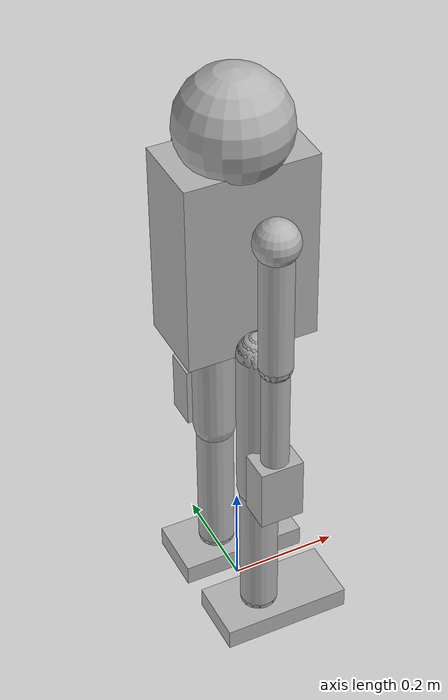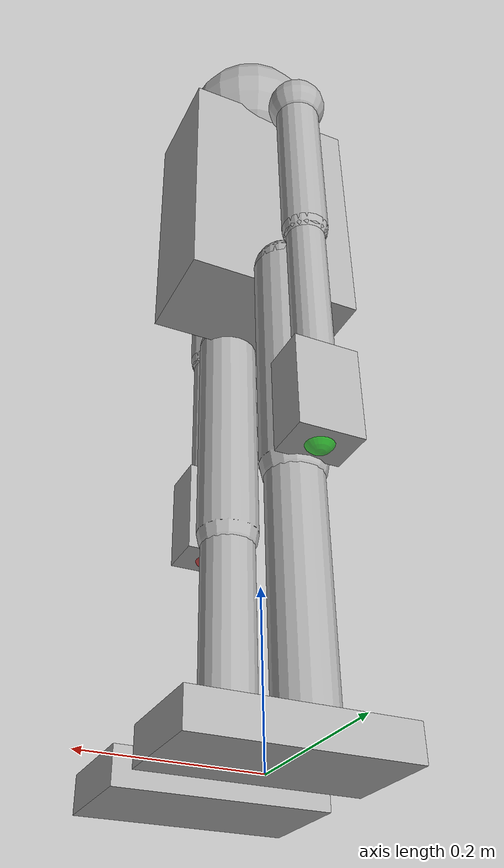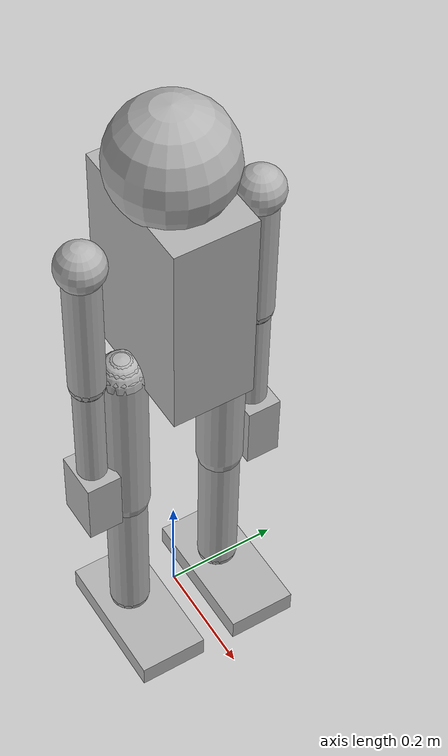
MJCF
<mujoco model="g1_full">

  <compiler angle="radian" autolimits="true"/>

  <option gravity="0 0 -9.81" timestep="0.002" integrator="implicitfast">
    <flag contact="enable" frictionloss="enable"/>
  </option>

  <default>
    <joint limited="true" damping="5.0" armature="0.01" frictionloss="0.1"/>
    <geom condim="3" friction="1.0 0.005 0.0001" rgba="0.7 0.7 0.7 1"/>
    <motor ctrllimited="true"/>
    <position kp="150" kv="10" ctrlrange="-10 10"/>
  </default>

  <asset>
    <texture type="skybox" builtin="gradient" rgb1="0.3 0.5 0.7" rgb2="0 0 0" width="512" height="3072"/>
    <texture type="2d" name="groundplane" builtin="checker" mark="edge" rgb1="0.2 0.3 0.4" rgb2="0.1 0.2 0.3" markrgb="0.8 0.8 0.8" width="300" height="300"/>
    <material name="groundplane" texture="groundplane" texuniform="true" texrepeat="5 5" reflectance="0.2"/>
    <material name="body_mat" rgba="0.3 0.3 0.8 1"/>
    <material name="link_mat" rgba="0.6 0.6 0.6 1"/>
    <material name="foot_mat" rgba="0.2 0.2 0.2 1"/>
  </asset>

  <worldbody>
    <!-- Floating base: torso -->
    <body name="torso" pos="0 0 0.78">
      <freejoint name="floating_base"/>
      <!-- Torso geometry -->
      <geom name="torso_geom" type="box" size="0.12 0.07 0.18" pos="0 0 0" material="body_mat" mass="10.0"/>
      <inertial pos="0 0 0" mass="10.0" diaginertia="0.08 0.06 0.05"/>

      <!-- WAIST -->
      <body name="waist" pos="0 0 -0.12">
        <joint name="waist_yaw" axis="0 0 1" range="-1.57 1.57" damping="8.0"/>
        <geom name="waist_geom" type="cylinder" size="0.06 0.04" pos="0 0 0" material="link_mat" mass="2.0"/>
        <inertial pos="0 0 0" mass="2.0" diaginertia="0.01 0.01 0.008"/>

        <!-- ===== LEFT LEG ===== -->
        <body name="left_hip_yaw_link" pos="0 0.09 -0.05">
          <joint name="left_hip_yaw" axis="0 0 1" range="-0.43 0.43" damping="8.0"/>
          <geom name="left_hip_yaw_geom" type="sphere" size="0.04" material="link_mat" mass="1.5"/>
          <inertial pos="0 0 0" mass="1.5" diaginertia="0.005 0.005 0.005"/>

          <body name="left_hip_roll_link" pos="0 0 0">
            <joint name="left_hip_roll" axis="1 0 0" range="-0.43 1.57" damping="8.0"/>
            <geom name="left_hip_roll_geom" type="sphere" size="0.04" material="link_mat" mass="0.5"/>
            <inertial pos="0 0 0" mass="0.5" diaginertia="0.002 0.002 0.002"/>

            <body name="left_hip_pitch_link" pos="0 0 0">
              <joint name="left_hip_pitch" axis="0 1 0" range="-1.57 1.57" damping="10.0"/>
              <geom name="left_thigh_geom" type="capsule" fromto="0 0 0 0 0 -0.3" size="0.04" material="link_mat" mass="3.5"/>
              <inertial pos="0 0 -0.15" mass="3.5" diaginertia="0.03 0.03 0.005"/>

              <body name="left_knee_link" pos="0 0 -0.3">
                <joint name="left_knee" axis="0 1 0" range="-0.26 2.53" damping="10.0"/>
                <geom name="left_shin_geom" type="capsule" fromto="0 0 0 0 0 -0.28" size="0.035" material="link_mat" mass="2.5"/>
                <inertial pos="0 0 -0.14" mass="2.5" diaginertia="0.02 0.02 0.003"/>

                <body name="left_ankle_pitch_link" pos="0 0 -0.28">
                  <joint name="left_ankle_pitch" axis="0 1 0" range="-0.87 0.52" damping="5.0"/>
                  <geom name="left_ankle_p_geom" type="sphere" size="0.035" material="link_mat" mass="0.5"/>
                  <inertial pos="0 0 0" mass="0.5" diaginertia="0.002 0.002 0.002"/>

                  <body name="left_ankle_roll_link" pos="0 0 0">
                    <joint name="left_ankle_roll" axis="1 0 0" range="-0.26 0.26" damping="3.0"/>
                    <geom name="left_foot_geom" type="box" size="0.12 0.06 0.02" pos="0.03 0 -0.03" material="foot_mat" mass="0.8"/>
                    <inertial pos="0.03 0 -0.03" mass="0.8" diaginertia="0.002 0.004 0.003"/>
                    <!-- Foot contact sites -->
                    <site name="left_foot_toe" pos="0.12 0 -0.04" size="0.01"/>
                    <site name="left_foot_heel" pos="-0.06 0 -0.04" size="0.01"/>
                    <site name="left_foot_center" pos="0.03 0 -0.04" size="0.01"/>
                  </body>
                </body>
              </body>
            </body>
          </body>
        </body>

        <!-- ===== RIGHT LEG ===== -->
        <body name="right_hip_yaw_link" pos="0 -0.09 -0.05">
          <joint name="right_hip_yaw" axis="0 0 1" range="-0.43 0.43" damping="8.0"/>
          <geom name="right_hip_yaw_geom" type="sphere" size="0.04" material="link_mat" mass="1.5"/>
          <inertial pos="0 0 0" mass="1.5" diaginertia="0.005 0.005 0.005"/>

          <body name="right_hip_roll_link" pos="0 0 0">
            <joint name="right_hip_roll" axis="1 0 0" range="-1.57 0.43" damping="8.0"/>
            <geom name="right_hip_roll_geom" type="sphere" size="0.04" material="link_mat" mass="0.5"/>
            <inertial pos="0 0 0" mass="0.5" diaginertia="0.002 0.002 0.002"/>

            <body name="right_hip_pitch_link" pos="0 0 0">
              <joint name="right_hip_pitch" axis="0 1 0" range="-1.57 1.57" damping="10.0"/>
              <geom name="right_thigh_geom" type="capsule" fromto="0 0 0 0 0 -0.3" size="0.04" material="link_mat" mass="3.5"/>
              <inertial pos="0 0 -0.15" mass="3.5" diaginertia="0.03 0.03 0.005"/>

              <body name="right_knee_link" pos="0 0 -0.3">
                <joint name="right_knee" axis="0 1 0" range="-0.26 2.53" damping="10.0"/>
                <geom name="right_shin_geom" type="capsule" fromto="0 0 0 0 0 -0.28" size="0.035" material="link_mat" mass="2.5"/>
                <inertial pos="0 0 -0.14" mass="2.5" diaginertia="0.02 0.02 0.003"/>

                <body name="right_ankle_pitch_link" pos="0 0 -0.28">
                  <joint name="right_ankle_pitch" axis="0 1 0" range="-0.87 0.52" damping="5.0"/>
                  <geom name="right_ankle_p_geom" type="sphere" size="0.035" material="link_mat" mass="0.5"/>
                  <inertial pos="0 0 0" mass="0.5" diaginertia="0.002 0.002 0.002"/>

                  <body name="right_ankle_roll_link" pos="0 0 0">
                    <joint name="right_ankle_roll" axis="1 0 0" range="-0.26 0.26" damping="3.0"/>
                    <geom name="right_foot_geom" type="box" size="0.12 0.06 0.02" pos="0.03 0 -0.03" material="foot_mat" mass="0.8"/>
                    <inertial pos="0.03 0 -0.03" mass="0.8" diaginertia="0.002 0.004 0.003"/>
                    <!-- Foot contact sites -->
                    <site name="right_foot_toe" pos="0.12 0 -0.04" size="0.01"/>
                    <site name="right_foot_heel" pos="-0.06 0 -0.04" size="0.01"/>
                    <site name="right_foot_center" pos="0.03 0 -0.04" size="0.01"/>
                  </body>
                </body>
              </body>
            </body>
          </body>
        </body>
      </body>

      <!-- ===== LEFT ARM ===== -->
      <body name="left_shoulder_link" pos="0 0.15 0.1">
        <joint name="left_shoulder_pitch" axis="0 1 0" range="-3.14 3.14" damping="5.0"/>
        <geom name="left_shoulder_geom" type="sphere" size="0.04" material="link_mat" mass="1.0"/>
        <inertial pos="0 0 0" mass="1.0" diaginertia="0.003 0.003 0.003"/>

        <body name="left_shoulder_roll_link" pos="0 0 0">
          <joint name="left_shoulder_roll" axis="1 0 0" range="-1.57 1.57" damping="5.0"/>
          <geom name="left_upper_arm_geom" type="capsule" fromto="0 0 0 0 0 -0.25" size="0.03" material="link_mat" mass="1.5"/>
          <inertial pos="0 0 -0.125" mass="1.5" diaginertia="0.01 0.01 0.002"/>

          <body name="left_shoulder_yaw_link" pos="0 0 -0.25">
            <joint name="left_shoulder_yaw" axis="0 0 1" range="-1.57 1.57" damping="3.0"/>
            <geom name="left_shoulder_y_geom" type="sphere" size="0.03" material="link_mat" mass="0.3"/>
            <inertial pos="0 0 0" mass="0.3" diaginertia="0.001 0.001 0.001"/>

            <body name="left_elbow_link" pos="0 0 0">
              <joint name="left_elbow" axis="0 1 0" range="-2.53 0.0" damping="3.0"/>
              <geom name="left_forearm_geom" type="capsule" fromto="0 0 0 0 0 -0.22" size="0.025" material="link_mat" mass="1.0"/>
              <inertial pos="0 0 -0.11" mass="1.0" diaginertia="0.005 0.005 0.001"/>

              <body name="left_wrist_roll_link" pos="0 0 -0.22">
                <joint name="left_wrist_roll" axis="0 0 1" range="-1.57 1.57" damping="2.0"/>
                <geom name="left_wrist_r_geom" type="sphere" size="0.025" material="link_mat" mass="0.2"/>
                <inertial pos="0 0 0" mass="0.2" diaginertia="0.0005 0.0005 0.0005"/>

                <body name="left_wrist_pitch_link" pos="0 0 0">
                  <joint name="left_wrist_pitch" axis="0 1 0" range="-1.57 1.57" damping="2.0"/>
                  <geom name="left_hand_geom" type="box" size="0.04 0.03 0.06" pos="0 0 -0.05" material="body_mat" mass="0.4"/>
                  <inertial pos="0 0 -0.05" mass="0.4" diaginertia="0.001 0.001 0.0008"/>
                  <site name="left_hand" pos="0 0 -0.1" size="0.02" rgba="0 1 0 0.5"/>
                </body>
              </body>
            </body>
          </body>
        </body>
      </body>

      <!-- ===== RIGHT ARM ===== -->
      <body name="right_shoulder_link" pos="0 -0.15 0.1">
        <joint name="right_shoulder_pitch" axis="0 1 0" range="-3.14 3.14" damping="5.0"/>
        <geom name="right_shoulder_geom" type="sphere" size="0.04" material="link_mat" mass="1.0"/>
        <inertial pos="0 0 0" mass="1.0" diaginertia="0.003 0.003 0.003"/>

        <body name="right_shoulder_roll_link" pos="0 0 0">
          <joint name="right_shoulder_roll" axis="1 0 0" range="-1.57 1.57" damping="5.0"/>
          <geom name="right_upper_arm_geom" type="capsule" fromto="0 0 0 0 0 -0.25" size="0.03" material="link_mat" mass="1.5"/>
          <inertial pos="0 0 -0.125" mass="1.5" diaginertia="0.01 0.01 0.002"/>

          <body name="right_shoulder_yaw_link" pos="0 0 -0.25">
            <joint name="right_shoulder_yaw" axis="0 0 1" range="-1.57 1.57" damping="3.0"/>
            <geom name="right_shoulder_y_geom" type="sphere" size="0.03" material="link_mat" mass="0.3"/>
            <inertial pos="0 0 0" mass="0.3" diaginertia="0.001 0.001 0.001"/>

            <body name="right_elbow_link" pos="0 0 0">
              <joint name="right_elbow" axis="0 1 0" range="-2.53 0.0" damping="3.0"/>
              <geom name="right_forearm_geom" type="capsule" fromto="0 0 0 0 0 -0.22" size="0.025" material="link_mat" mass="1.0"/>
              <inertial pos="0 0 -0.11" mass="1.0" diaginertia="0.005 0.005 0.001"/>

              <body name="right_wrist_roll_link" pos="0 0 -0.22">
                <joint name="right_wrist_roll" axis="0 0 1" range="-1.57 1.57" damping="2.0"/>
                <geom name="right_wrist_r_geom" type="sphere" size="0.025" material="link_mat" mass="0.2"/>
                <inertial pos="0 0 0" mass="0.2" diaginertia="0.0005 0.0005 0.0005"/>

                <body name="right_wrist_pitch_link" pos="0 0 0">
                  <joint name="right_wrist_pitch" axis="0 1 0" range="-1.57 1.57" damping="2.0"/>
                  <geom name="right_hand_geom" type="box" size="0.04 0.03 0.06" pos="0 0 -0.05" material="body_mat" mass="0.4"/>
                  <inertial pos="0 0 -0.05" mass="0.4" diaginertia="0.001 0.001 0.0008"/>
                  <site name="right_hand" pos="0 0 -0.1" size="0.02" rgba="1 0 0 0.5"/>
                </body>
              </body>
            </body>
          </body>
        </body>
      </body>

      <!-- HEAD (no joints - rigid) -->
      <body name="head" pos="0 0 0.23">
        <geom name="head_geom" type="sphere" size="0.1" material="body_mat" mass="1.5"/>
        <inertial pos="0 0 0" mass="1.5" diaginertia="0.006 0.005 0.005"/>
        <site name="head_imu" pos="0 0 0" size="0.01"/>
      </body>
    </body>
  </worldbody>

  <!-- ===== ACTUATORS ===== -->
  <!-- All actuators use position control with PD gains -->
  <!-- Waist -->
  <actuator>
    <position name="waist_yaw_act" joint="waist_yaw" kp="200" kv="15" ctrlrange="-1.57 1.57"/>

    <!-- Left leg -->
    <position name="left_hip_yaw_act" joint="left_hip_yaw" kp="300" kv="20" ctrlrange="-0.43 0.43"/>
    <position name="left_hip_roll_act" joint="left_hip_roll" kp="300" kv="20" ctrlrange="-0.43 1.57"/>
    <position name="left_hip_pitch_act" joint="left_hip_pitch" kp="400" kv="25" ctrlrange="-1.57 1.57"/>
    <position name="left_knee_act" joint="left_knee" kp="400" kv="25" ctrlrange="-0.26 2.53"/>
    <position name="left_ankle_pitch_act" joint="left_ankle_pitch" kp="200" kv="15" ctrlrange="-0.87 0.52"/>
    <position name="left_ankle_roll_act" joint="left_ankle_roll" kp="150" kv="10" ctrlrange="-0.26 0.26"/>

    <!-- Right leg -->
    <position name="right_hip_yaw_act" joint="right_hip_yaw" kp="300" kv="20" ctrlrange="-0.43 0.43"/>
    <position name="right_hip_roll_act" joint="right_hip_roll" kp="300" kv="20" ctrlrange="-1.57 0.43"/>
    <position name="right_hip_pitch_act" joint="right_hip_pitch" kp="400" kv="25" ctrlrange="-1.57 1.57"/>
    <position name="right_knee_act" joint="right_knee" kp="400" kv="25" ctrlrange="-0.26 2.53"/>
    <position name="right_ankle_pitch_act" joint="right_ankle_pitch" kp="200" kv="15" ctrlrange="-0.87 0.52"/>
    <position name="right_ankle_roll_act" joint="right_ankle_roll" kp="150" kv="10" ctrlrange="-0.26 0.26"/>

    <!-- Left arm -->
    <position name="left_shoulder_pitch_act" joint="left_shoulder_pitch" kp="100" kv="8" ctrlrange="-3.14 3.14"/>
    <position name="left_shoulder_roll_act" joint="left_shoulder_roll" kp="100" kv="8" ctrlrange="-1.57 1.57"/>
    <position name="left_shoulder_yaw_act" joint="left_shoulder_yaw" kp="80" kv="6" ctrlrange="-1.57 1.57"/>
    <position name="left_elbow_act" joint="left_elbow" kp="80" kv="6" ctrlrange="-2.53 0.0"/>
    <position name="left_wrist_roll_act" joint="left_wrist_roll" kp="40" kv="4" ctrlrange="-1.57 1.57"/>
    <position name="left_wrist_pitch_act" joint="left_wrist_pitch" kp="40" kv="4" ctrlrange="-1.57 1.57"/>

    <!-- Right arm -->
    <position name="right_shoulder_pitch_act" joint="right_shoulder_pitch" kp="100" kv="8" ctrlrange="-3.14 3.14"/>
    <position name="right_shoulder_roll_act" joint="right_shoulder_roll" kp="100" kv="8" ctrlrange="-1.57 1.57"/>
    <position name="right_shoulder_yaw_act" joint="right_shoulder_yaw" kp="80" kv="6" ctrlrange="-1.57 1.57"/>
    <position name="right_elbow_act" joint="right_elbow" kp="80" kv="6" ctrlrange="-2.53 0.0"/>
    <position name="right_wrist_roll_act" joint="right_wrist_roll" kp="40" kv="4" ctrlrange="-1.57 1.57"/>
    <position name="right_wrist_pitch_act" joint="right_wrist_pitch" kp="40" kv="4" ctrlrange="-1.57 1.57"/>
  </actuator>

  <!-- Sensors -->
  <sensor>
    <framepos name="torso_pos" objtype="body" objname="torso"/>
    <framequat name="torso_quat" objtype="body" objname="torso"/>
    <framelinvel name="torso_linvel" objtype="body" objname="torso"/>
    <frameangvel name="torso_angvel" objtype="body" objname="torso"/>
    <framepos name="left_foot_pos" objtype="site" objname="left_foot_center"/>
    <framepos name="right_foot_pos" objtype="site" objname="right_foot_center"/>
    <framepos name="left_hand_pos" objtype="site" objname="left_hand"/>
    <framepos name="right_hand_pos" objtype="site" objname="right_hand"/>
    <subtreecom name="total_com" body="torso"/>
  </sensor>

</mujoco>
